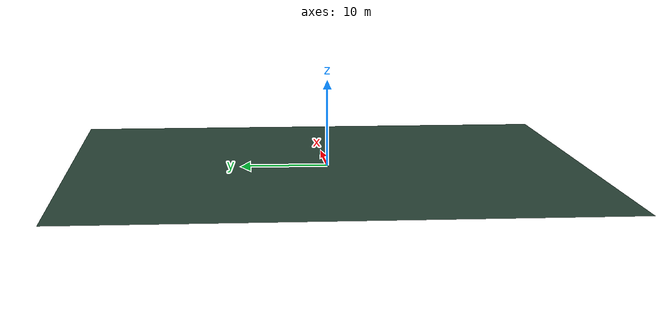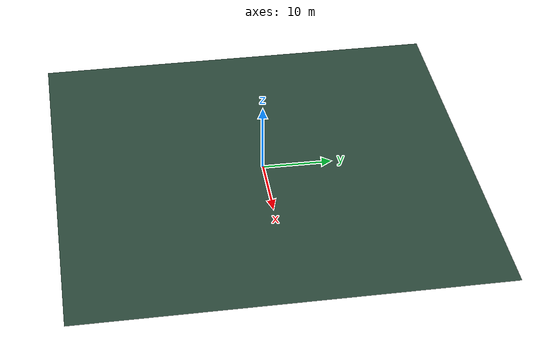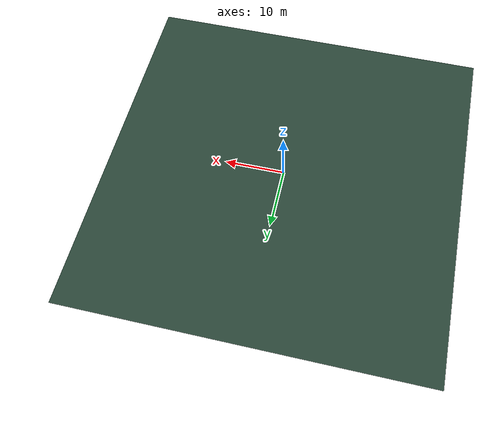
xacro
<?xml version="1.0"?>
<robot name="inspection_water" xmlns:xacro="http://www.ros.org/wiki/xacro">
  <link name="inspection_water_link">
    <inertial>
      <origin xyz="0 0 0" rpy="0 0 0"/>
      <mass value="1"/>
      <inertia ixx="1" ixy="0" ixz="0" iyy="1" iyz="0" izz="1"/>
    </inertial>
    <visual>
      <origin xyz="0 0 0" rpy="0 0 0"/>
      <geometry>
        <mesh filename="package://cpr_inspection_gazebo/meshes/inspection_water.dae"/>
      </geometry>
    </visual>
  </link>
  <gazebo> <static>true</static></gazebo>
</robot>
